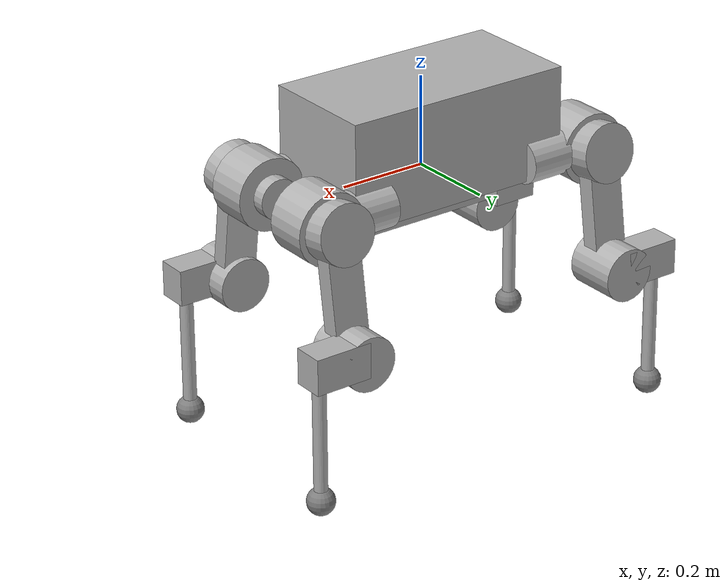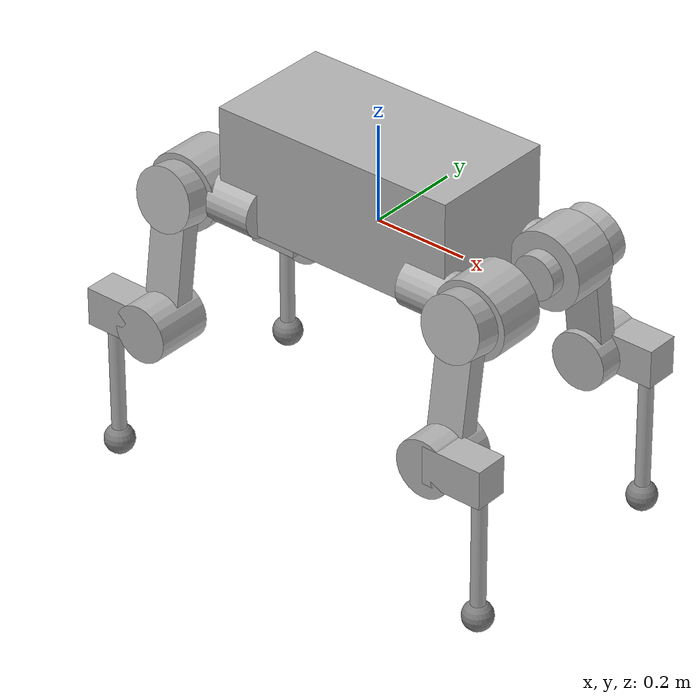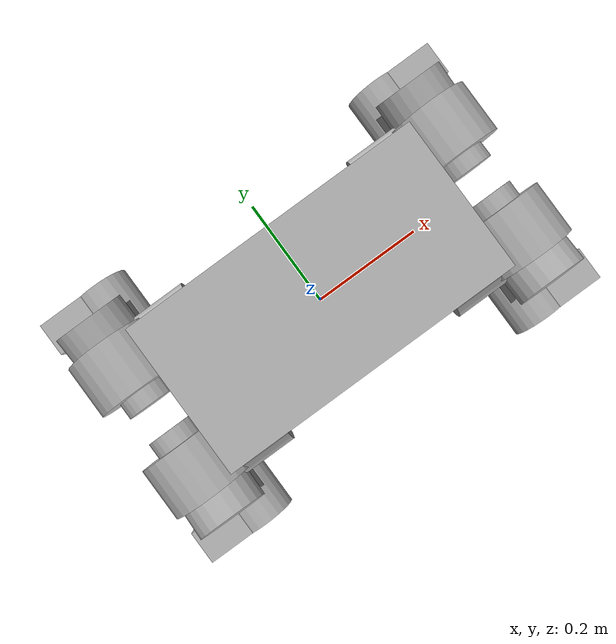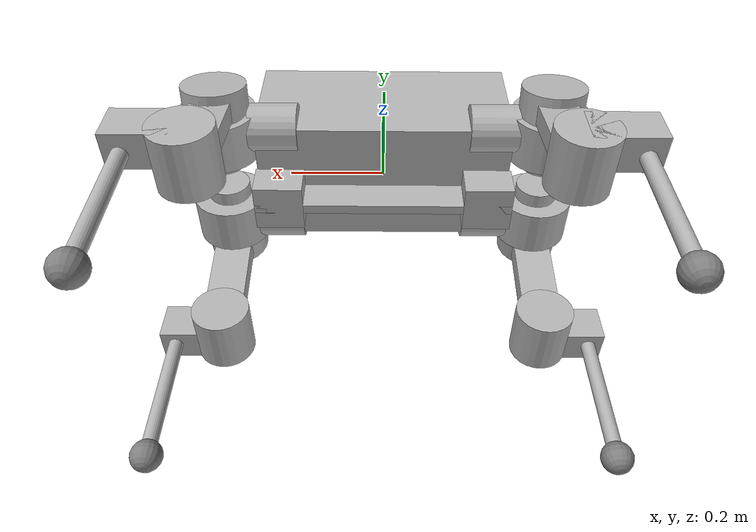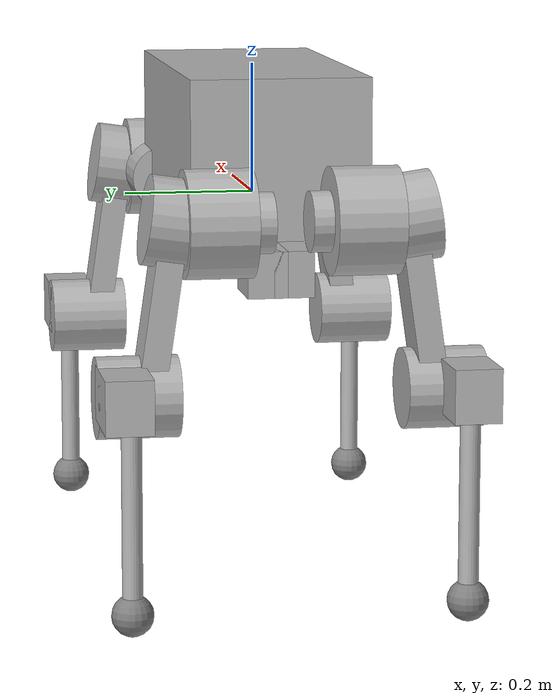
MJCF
<mujoco model="anymal">
    <compiler angle="radian"  meshdir="../meshes/"/>
    <size njmax="500" nconmax="100" />
    <option integrator="Euler" timestep="0.01"/>
<worldbody>
        <geom size="0.2655 0.135 0.12" pos="0 0 0.08" type="box" rgba="0.7 0.7 0.7 1" />
        <geom size="0.05 0.05" pos="0.227 0.116 0" quat="0.707107 0 0.707107 0" type="cylinder" rgba="0.7 0.7 0.7 1" />
        <geom size="0.05 0.05" pos="0.227 -0.116 0" quat="0.707107 0 0.707107 0" type="cylinder" rgba="0.7 0.7 0.7 1" />
        <geom size="0.05 0.05" pos="-0.227 0.116 0" quat="0.707107 0 0.707107 0" type="cylinder" rgba="0.7 0.7 0.7 1" />
        <geom size="0.05 0.05" pos="-0.227 -0.116 0" quat="0.707107 0 0.707107 0" type="cylinder" rgba="0.7 0.7 0.7 1" />
        <geom size="0.05 0.05 0.035" pos="0.2155 0 -0.09" type="box" rgba="0.7 0.7 0.7 1" />
        <geom size="0.05 0.05 0.035" pos="-0.2155 0 -0.09" type="box" rgba="0.7 0.7 0.7 1" />
        <geom size="0.2655 0.01 0.035" pos="0 0 -0.09" type="box" rgba="0.7 0.7 0.7 1" />
        <body name="LF_HIP" pos="0.277 0.116 0">
            <inertial pos="0.0645163 -0.0037871 -0.000152184" quat="0.996866 0.0379822 0.0252009 -0.0646548" mass="1.42462" diaginertia="0.00243341 0.00230249 0.00197758" />
            <joint name="LF_HAA" pos="0 0 0" axis="1 0 0" limited="true" range="-9.42 9.42" />
            <geom size="0.08 0.05" pos="0.0635 -0.009 0" quat="0.707107 0.707107 0 0" type="cylinder" rgba="0.7 0.7 0.7 1" />
            <geom size="0.045 0.015" pos="0.0635 -0.074 0" quat="0.707107 0.707107 0 0" type="cylinder" rgba="0.7 0.7 0.7 1" />
            <body name="LF_THIGH" pos="0.0635 0.041 0">
                <inertial pos="-0.00389797 0.0542266 -0.214583" quat="0.74395 -0.0633414 0.0362707 0.664237" mass="1.63498" diaginertia="0.0122697 0.0120427 0.00228302" />
                <joint name="LF_HFE" pos="0 0 0" axis="0 1 0" limited="true" range="-9.42 9.42" />
                <geom size="0.04 0.02 0.125" pos="0 0.035 -0.125" quat="0.997373 0.0724365 0 0" type="box" rgba="0.7 0.7 0.7 1" />
                <geom size="0.06 0.06" pos="0 0.069 -0.25" quat="0.707107 0.707107 0 0" type="cylinder" rgba="0.7 0.7 0.7 1" />
                <geom size="0.066 0.06" pos="0 -0.005 0" quat="0.654029 0.75647 0 0" type="cylinder" rgba="0.7 0.7 0.7 1" />
                <body name="LF_SHANK" pos="0 0.109 -0.25">
                    <inertial pos="0.0696396 -0.0132494 -0.150905" quat="0.677954 -0.0950614 -0.0578104 0.726636" mass="0.472163" diaginertia="0.0116034 0.0110666 0.000723761" />
                    <joint name="LF_KFE" pos="0 0 0" axis="0 1 0" limited="true" range="-9.42 9.42" />
                    <geom size="0.04 0.035 0.065" pos="0.065 -0.015 0.01" quat="0.707107 0 0.707107 0" type="box" rgba="0.7 0.7 0.7 1" />
                    <geom size="0.015 0.160625" pos="0.1 -0.02 -0.160625" type="cylinder" rgba="0.7 0.7 0.7 1" />
                    <geom size="0.031" pos="0.1 -0.02 -0.298" />
                </body>
            </body>
        </body>
        <body name="RF_HIP" pos="0.277 -0.116 0">
            <inertial pos="0.0645163 0.0037871 -0.000152184" quat="0.996866 -0.0379822 0.0252009 0.0646548" mass="1.42462" diaginertia="0.00243341 0.00230249 0.00197758" />
            <joint name="RF_HAA" pos="0 0 0" axis="1 0 0" limited="true" range="-9.42 9.42" />
            <geom size="0.08 0.05" pos="0.0635 0.009 0" quat="0.707107 0.707107 0 0" type="cylinder" rgba="0.7 0.7 0.7 1" />
            <geom size="0.045 0.015" pos="0.0635 0.074 0" quat="0.707107 0.707107 0 0" type="cylinder" rgba="0.7 0.7 0.7 1" />
            <body name="RF_THIGH" pos="0.0635 -0.041 0">
                <inertial pos="-0.00389797 -0.0542266 -0.214583" quat="0.664237 0.0362707 -0.0633414 0.74395" mass="1.63498" diaginertia="0.0122697 0.0120427 0.00228302" />
                <joint name="RF_HFE" pos="0 0 0" axis="0 1 0" limited="true" range="-9.42 9.42" />
                <geom size="0.04 0.02 0.125" pos="0 -0.035 -0.125" quat="0.997373 -0.0724365 0 0" type="box" rgba="0.7 0.7 0.7 1" />
                <geom size="0.06 0.06" pos="0 -0.069 -0.25" quat="0.707107 0.707107 0 0" type="cylinder" rgba="0.7 0.7 0.7 1" />
                <geom size="0.066 0.06" pos="0 0.005 0" quat="0.654029 -0.75647 0 0" type="cylinder" rgba="0.7 0.7 0.7 1" />
                <body name="RF_SHANK" pos="0 -0.109 -0.25">
                    <inertial pos="0.0696396 0.0132494 -0.150905" quat="0.726636 -0.0578104 -0.0950614 0.677954" mass="0.472163" diaginertia="0.0116034 0.0110666 0.000723761" />
                    <joint name="RF_KFE" pos="0 0 0" axis="0 1 0" limited="true" range="-9.42 9.42" />
                    <geom size="0.04 0.035 0.065" pos="0.065 0.015 0.01" quat="0.707107 0 0.707107 0" type="box" rgba="0.7 0.7 0.7 1" />
                    <geom size="0.015 0.160625" pos="0.1 0.02 -0.160625" type="cylinder" rgba="0.7 0.7 0.7 1" />
                    <geom size="0.031" pos="0.1 0.02 -0.298" />
                </body>
            </body>
        </body>
        <body name="LH_HIP" pos="-0.277 0.116 0">
            <inertial pos="-0.0645163 -0.0037871 -0.000152184" quat="0.996866 0.0379822 -0.0252009 0.0646548" mass="1.42462" diaginertia="0.00243341 0.00230249 0.00197758" />
            <joint name="LH_HAA" pos="0 0 0" axis="1 0 0" limited="true" range="-9.42 9.42" />
            <geom size="0.08 0.05" pos="-0.0635 -0.009 0" quat="0.707107 -0.707107 0 0" type="cylinder" rgba="0.7 0.7 0.7 1" />
            <geom size="0.045 0.015" pos="-0.0635 -0.074 0" quat="0.707107 -0.707107 0 0" type="cylinder" rgba="0.7 0.7 0.7 1" />
            <body name="LH_THIGH" pos="-0.0635 0.041 0">
                <inertial pos="0.00389797 0.0542266 -0.214583" quat="0.664237 -0.0362707 0.0633414 0.74395" mass="1.63498" diaginertia="0.0122697 0.0120427 0.00228302" />
                <joint name="LH_HFE" pos="0 0 0" axis="0 1 0" limited="true" range="-9.42 9.42" />
                <geom size="0.04 0.02 0.125" pos="0 0.035 -0.125" quat="0.997373 0.0724365 0 0" type="box" rgba="0.7 0.7 0.7 1" />
                <geom size="0.06 0.06" pos="0 0.069 -0.25" quat="0.707107 0.707107 0 0" type="cylinder" rgba="0.7 0.7 0.7 1" />
                <geom size="0.066 0.06" pos="0 -0.005 0" quat="0.654029 0.75647 0 0" type="cylinder" rgba="0.7 0.7 0.7 1" />
                <body name="LH_SHANK" pos="0 0.109 -0.25">
                    <inertial pos="-0.0696396 -0.0132494 -0.150905" quat="0.726636 0.0578104 0.0950615 0.677954" mass="0.472163" diaginertia="0.0116034 0.0110666 0.000723761" />
                    <joint name="LH_KFE" pos="0 0 0" axis="0 1 0" limited="true" range="-9.42 9.42" />
                    <geom size="0.04 0.035 0.065" pos="-0.065 -0.015 0.01" quat="0.707107 0 0.707107 0" type="box" rgba="0.7 0.7 0.7 1" />
                    <geom size="0.015 0.160625" pos="-0.1 -0.02 -0.160625" type="cylinder" rgba="0.7 0.7 0.7 1" />
                    <geom size="0.031" pos="-0.1 -0.02 -0.298" />
                </body>
            </body>
        </body>
        <body name="RH_HIP" pos="-0.277 -0.116 0">
            <inertial pos="-0.0645163 0.0037871 -0.000152184" quat="0.996866 -0.0379822 -0.0252009 -0.0646548" mass="1.42462" diaginertia="0.00243341 0.00230249 0.00197758" />
            <joint name="RH_HAA" pos="0 0 0" axis="1 0 0" limited="true" range="-9.42 9.42" />
            <geom size="0.08 0.05" pos="-0.0635 0.009 0" quat="0.707107 -0.707107 0 0" type="cylinder" rgba="0.7 0.7 0.7 1" />
            <geom size="0.045 0.015" pos="-0.0635 0.074 0" quat="0.707107 -0.707107 0 0" type="cylinder" rgba="0.7 0.7 0.7 1" />
            <body name="RH_THIGH" pos="-0.0635 -0.041 0">
                <inertial pos="0.00389797 -0.0542266 -0.214583" quat="0.74395 0.0633414 -0.0362707 0.664237" mass="1.63498" diaginertia="0.0122697 0.0120427 0.00228302" />
                <joint name="RH_HFE" pos="0 0 0" axis="0 1 0" limited="true" range="-9.42 9.42" />
                <geom size="0.04 0.02 0.125" pos="0 -0.035 -0.125" quat="0.997373 -0.0724365 0 0" type="box" rgba="0.7 0.7 0.7 1" />
                <geom size="0.06 0.06" pos="0 -0.069 -0.25" quat="0.707107 0.707107 0 0" type="cylinder" rgba="0.7 0.7 0.7 1" />
                <geom size="0.066 0.06" pos="0 0.005 0" quat="0.654029 -0.75647 0 0" type="cylinder" rgba="0.7 0.7 0.7 1" />
                <body name="RH_SHANK" pos="0 -0.109 -0.25">
                    <inertial pos="-0.0696396 0.0132494 -0.150905" quat="0.677954 0.0950614 0.0578104 0.726636" mass="0.472163" diaginertia="0.0116034 0.0110666 0.000723761" />
                    <joint name="RH_KFE" pos="0 0 0" axis="0 1 0" limited="true" range="-9.42 9.42" />
                    <geom size="0.04 0.035 0.065" pos="-0.065 0.015 0.01" quat="0.707107 0 0.707107 0" type="box" rgba="0.7 0.7 0.7 1" />
                    <geom size="0.015 0.160625" pos="-0.1 0.02 -0.160625" type="cylinder" rgba="0.7 0.7 0.7 1" />
                    <geom size="0.031" pos="-0.1 0.02 -0.298" />
                </body>
            </body>
        </body>
    </worldbody>

    <actuator>
      <motor ctrllimited="true" ctrlrange="-1.0 1.0" joint="LF_HAA" gear="15000"/>
      <motor ctrllimited="true" ctrlrange="-1.0 1.0" joint="LF_HFE" gear="150"/>
      <motor ctrllimited="true" ctrlrange="-1.0 1.0" joint="LF_KFE" gear="150"/>
      <motor ctrllimited="true" ctrlrange="-1.0 1.0" joint="RF_HAA" gear="150"/>
      <motor ctrllimited="true" ctrlrange="-1.0 1.0" joint="RF_HFE" gear="150"/>
      <motor ctrllimited="true" ctrlrange="-1.0 1.0" joint="RF_KFE" gear="150"/>
      <motor ctrllimited="true" ctrlrange="-1.0 1.0" joint="LH_HAA" gear="150"/>
      <motor ctrllimited="true" ctrlrange="-1.0 1.0" joint="LH_HFE" gear="150"/>
      <motor ctrllimited="true" ctrlrange="-1.0 1.0" joint="LH_KFE" gear="150"/>
      <motor ctrllimited="true" ctrlrange="-1.0 1.0" joint="RH_HAA" gear="150"/>
      <motor ctrllimited="true" ctrlrange="-1.0 1.0" joint="RH_HFE" gear="150"/>
      <motor ctrllimited="true" ctrlrange="-1.0 1.0" joint="RH_KFE" gear="150"/>
    </actuator>
</mujoco>
